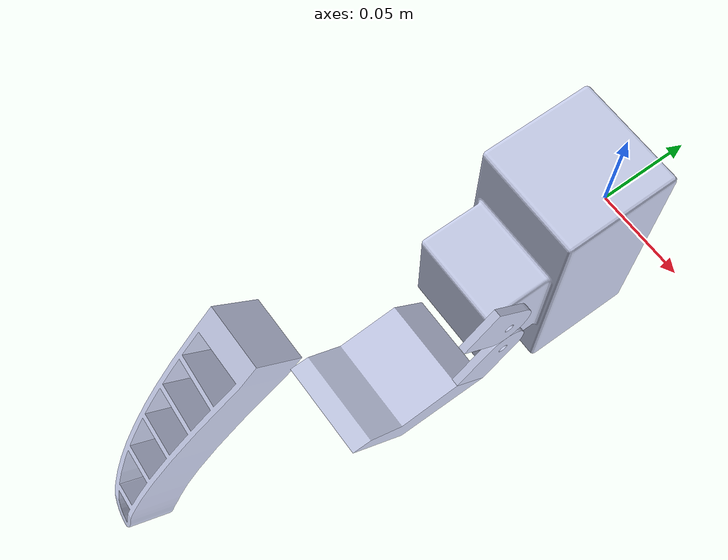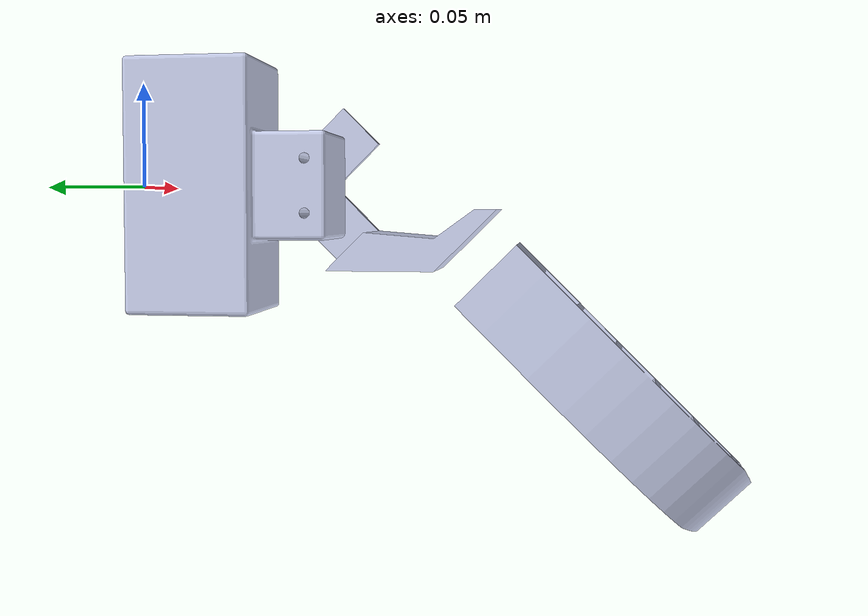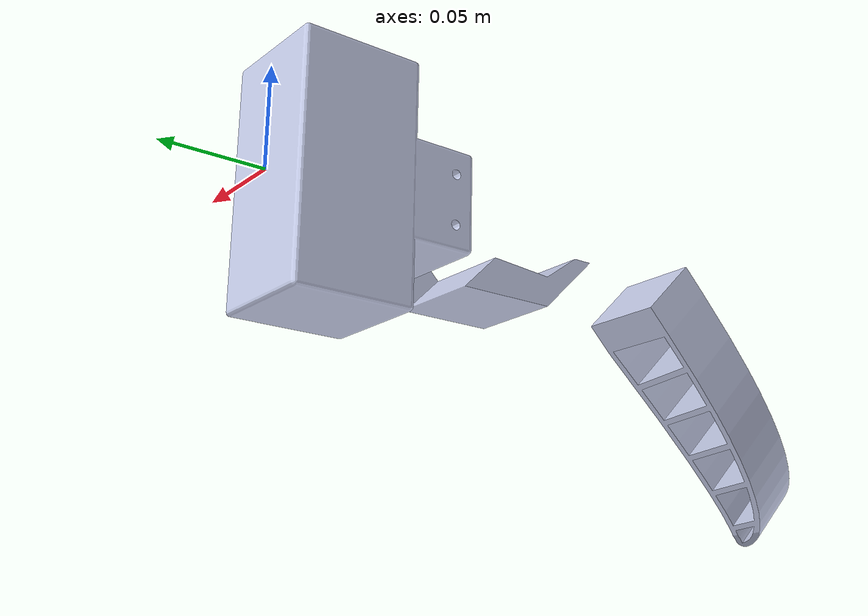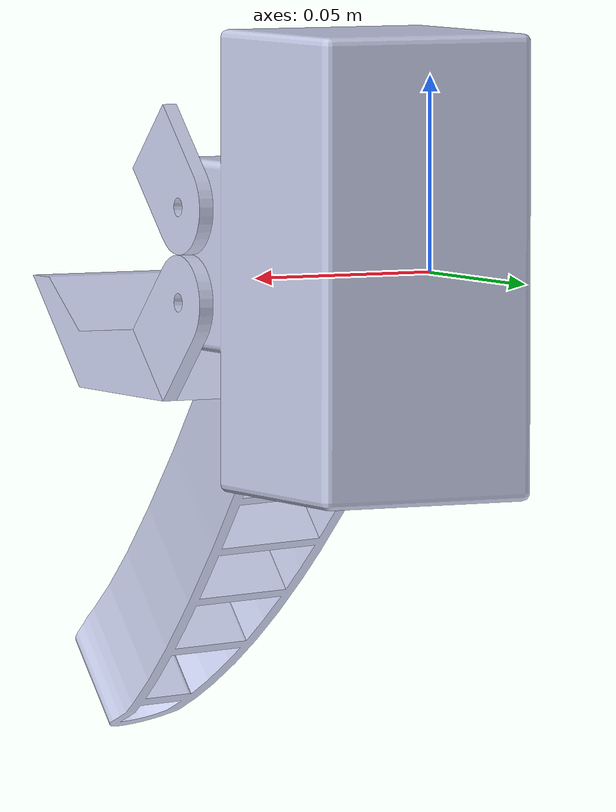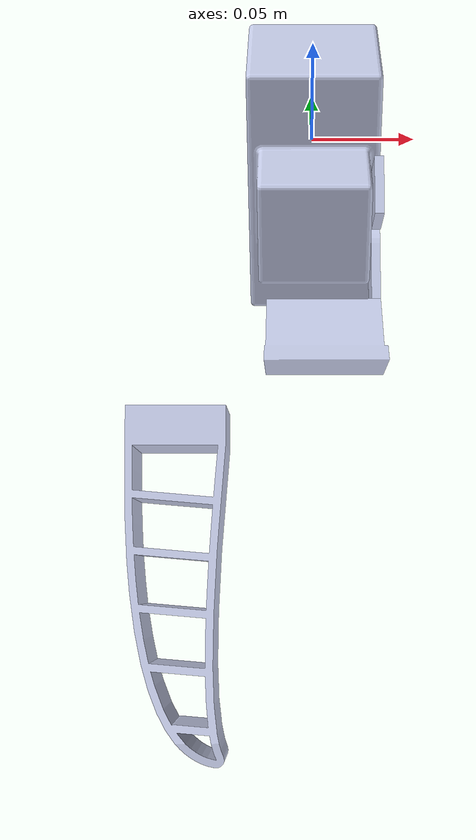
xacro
<?xml version="1.0" encoding="utf-8"?>
<robot xmlns:xacro="http://ros.org/wiki/xacro" name="dashgo">

  <!-- load gripper -->
  <xacro:include filename="$(find robot_description)/urdf/gripper/gripperSF.urdf.xacro" />
  <xacro:load_gripperSF attach_to="" xyz="0 0 0" rpy="0 0 0" />

</robot>

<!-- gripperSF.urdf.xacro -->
<robot xmlns:xacro="http://ros.org/wiki/xacro" name="Gripper">
  <xacro:macro name="load_gripperSF" params="attach_to:='' xyz:='0 0 0' rpy:='0 0 0'">
    <xacro:unless value="${attach_to == ''}">
      <joint name="gripper_fix" type="fixed">
        <parent link="${attach_to}"/>
        <child link="Base_Gripper"/>
        <origin xyz="${xyz}" rpy="${rpy}"/>
      </joint>
    </xacro:unless>

    <link name="end_effector_link">
    </link>
    <joint name="end_effector_joint" type="fixed">
        <parent link="Base_Gripper" />
        <child link="end_effector_link" />
        <origin xyz="0.0 -0.125 0" rpy="1.57 0 -1.57" />
    </joint>

    <link
      name="Base_Gripper">
      <inertial>
        <origin
          xyz="4.21738922031144E-18 2.00787620612413E-18 0.0378144840174591"
          rpy="0 0 0" />
        <mass
          value="0.516607789353608" />
        <inertia
          ixx="0.000831389945414142"
          ixy="-2.21787801740781E-20"
          ixz="1.66219465220325E-20"
          iyy="0.000443816179175048"
          iyz="3.05902948293233E-21"
          izz="0.000681097815743884" />
      </inertial>
      <visual>
        <origin
          xyz="0 0 0"
          rpy="1.57 0 0" />
        <geometry>
          <mesh
            filename="package://robot_description/meshes/GripperSF/Base_Gripper.STL" />
        </geometry>
        <material
          name="">
          <color
            rgba="0.792156862745098 0.819607843137255 0.933333333333333 1" />
        </material>
      </visual>
      <collision>
        <origin
          xyz="0 0 0"
          rpy="0 0 0" />
        <geometry>
          <mesh
            filename="package://robot_description/meshes/GripperSF/Base_Gripper.STL" />
        </geometry>
      </collision>
  </link>
  <link
    name="Servo1">
    <inertial>
      <origin
        xyz="2.08166817117217E-17 0.00765209400201583 0.002"
        rpy="0 0 0" />
      <mass
        value="0.00340320788790707" />
      <inertia
        ixx="3.64324463782157E-07"
        ixy="-7.27918939046664E-23"
        ixz="-2.27911008833175E-24"
        iyy="1.72972745084653E-07"
        iyz="3.50518784550926E-24"
        izz="5.28221987832391E-07" />
    </inertial>
    <visual>
      <origin
        xyz="0 0 0"
        rpy="0 0 0" />
      <geometry>
        <mesh
          filename="package://robot_description/meshes/GripperSF/Servo1.STL" />
      </geometry>
      <material
        name="">
        <color
          rgba="0.792156862745098 0.819607843137255 0.933333333333333 1" />
      </material>
    </visual>
    <collision>
      <origin
        xyz="0 0 0"
        rpy="0 0 0" />
      <geometry>
        <mesh
          filename="package://robot_description/meshes/GripperSF/Servo1.STL" />
      </geometry>
    </collision>
  </link>
  <joint
    name="Rev1Servo"
    type="revolute">
    <origin
      xyz="0.025 -0.085 0.0125"
      rpy="1.5708 -0.7854 1.5708" />
    <parent
      link="Base_Gripper" />
    <child
      link="Servo1" />
    <axis
      xyz="0 0 1" />
    <limit
      lower="-0.52"
      upper="0.52"
      effort="0"
      velocity="0" />
  </joint>
  <link
    name="Dedo1">
    <inertial>
      <origin
        xyz="0.025 0.0194950722582391 0.0215202503489297"
        rpy="0 0 0" />
      <mass
        value="0.0481456303681194" />
      <inertia
        ixx="1.85056890508066E-05"
        ixy="6.4090118340269E-22"
        ixz="1.49782108916524E-21"
        iyy="2.29959536609367E-05"
        iyz="-7.07475784630465E-06"
        izz="1.55704147099196E-05" />
    </inertial>
    <visual>
      <origin
        xyz="0 0 0"
        rpy="3.14 0 0" />
      <geometry>
        <mesh
          filename="package://robot_description/meshes/GripperSF/Dedo1.STL" />
      </geometry>
      <material
        name="">
        <color
          rgba="0.792156862745098 0.819607843137255 0.933333333333333 1" />
      </material>
    </visual>
    <collision>
      <origin
        xyz="0 0 0"
        rpy="0 0 0" />
      <geometry>
        <mesh
          filename="package://robot_description/meshes/GripperSF/Dedo1.STL" />
      </geometry>
    </collision>
  </link>
  <joint
    name="Fix1Dedo"
    type="fixed">
    <origin
      xyz="0 0.025 -0.046"
      rpy="3.1416 -1.5708 0" />
    <parent
      link="Servo1" />
    <child
      link="Dedo1" />
    <axis
      xyz="0 0 0" />
  </joint>
  <link
    name="Servo2">
    <inertial>
      <origin
        xyz="-6.93889390390723E-18 0.00765209400201584 0.00200000000000001"
        rpy="0 0 0" />
      <mass
        value="0.00340320788790707" />
      <inertia
        ixx="3.64324463782157E-07"
        ixy="1.45583787809333E-22"
        ixz="4.15267079728299E-24"
        iyy="1.72972745084653E-07"
        iyz="3.30065685426304E-24"
        izz="5.28221987832391E-07" />
    </inertial>
    <visual>
      <origin
        xyz="0 0 0"
        rpy="0 0 0" />
      <geometry>
        <mesh
          filename="package://robot_description/meshes/GripperSF/Servo2.STL" />
      </geometry>
      <material
        name="">
        <color
          rgba="0.792156862745098 0.819607843137255 0.933333333333333 1" />
      </material>
    </visual>
    <collision>
      <origin
        xyz="0 0 0"
        rpy="0 0 0" />
      <geometry>
        <mesh
          filename="package://robot_description/meshes/GripperSF/Servo2.STL" />
      </geometry>
    </collision>
  </link>
  <joint
    name="Rev2Servo"
    type="revolute">
    <origin
      xyz="0.025 -0.085 -0.0125"
      rpy="-1.5708 -0.7854 -1.5708" />
    <parent
      link="Base_Gripper" />
    <child
      link="Servo2" />
    <axis
      xyz="0 0 1" />
    <limit
      lower="-0.52"
      upper="0.52"
      effort="0"
      velocity="0" />
    <mimic
      joint="Rev1Servo"
      multiplier="-1"
      offset="0" />
  </joint>
  <link
    name="Dedo2">
    <inertial>
      <origin
        xyz="0.025 0.019495072258239 0.0215202503489296"
        rpy="0 0 0" />
      <mass
        value="0.0481456303681194" />
      <inertia
        ixx="1.85056890508066E-05"
        ixy="4.84183719412462E-21"
        ixz="3.67595393072787E-21"
        iyy="2.29959536609367E-05"
        iyz="-7.07475784630464E-06"
        izz="1.55704147099196E-05" />
    </inertial>
    <visual>
      <origin
        xyz="0 0 0"
        rpy="0 0 0" />
      <geometry>
        <mesh
          filename="package://robot_description/meshes/GripperSF/Dedo2.STL" />
      </geometry>
      <material
        name="">
        <color
          rgba="0.792156862745098 0.819607843137255 0.933333333333333 1" />
      </material>
    </visual>
    <collision>
      <origin
        xyz="0 0 0"
        rpy="0 0 0" />
      <geometry>
        <mesh
          filename="package://robot_description/meshes/GripperSF/Dedo2.STL" />
      </geometry>
    </collision>
  </link>
  <joint
    name="Fix2Dedo"
    type="fixed">
    <origin
      xyz="0 0.025 0.004"
      rpy="0 1.5708 0" />
    <parent
      link="Servo2" />
    <child
      link="Dedo2" />
    <axis
      xyz="0 0 0" />
  </joint>
  </xacro:macro>
</robot>
